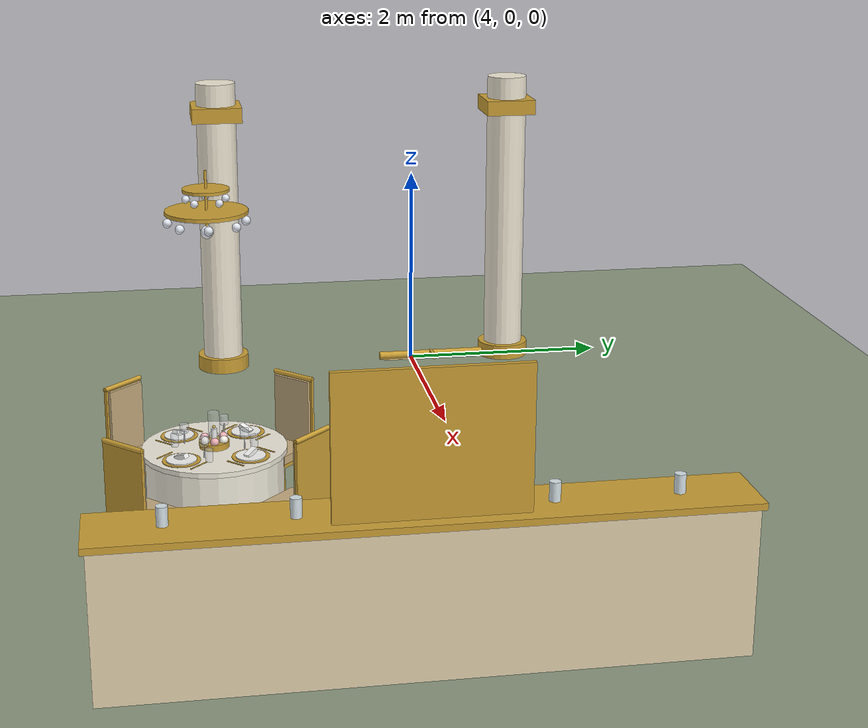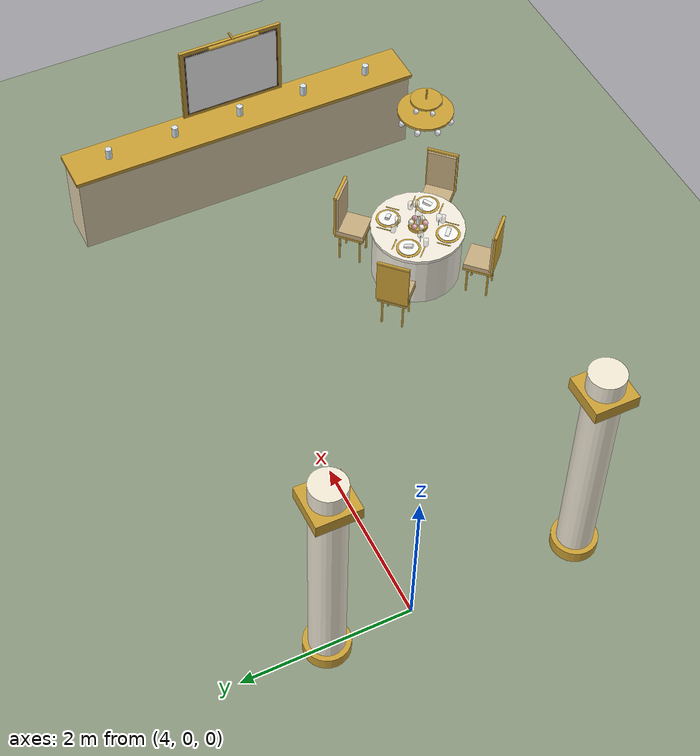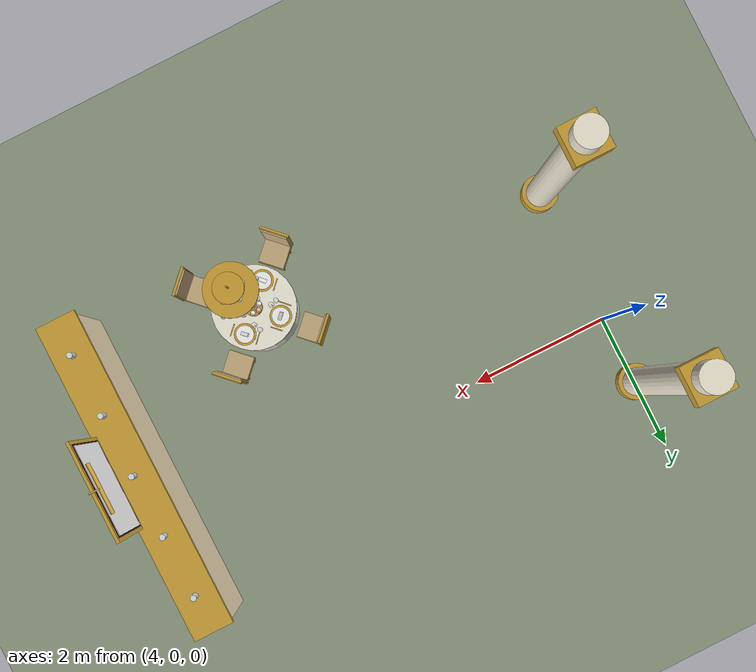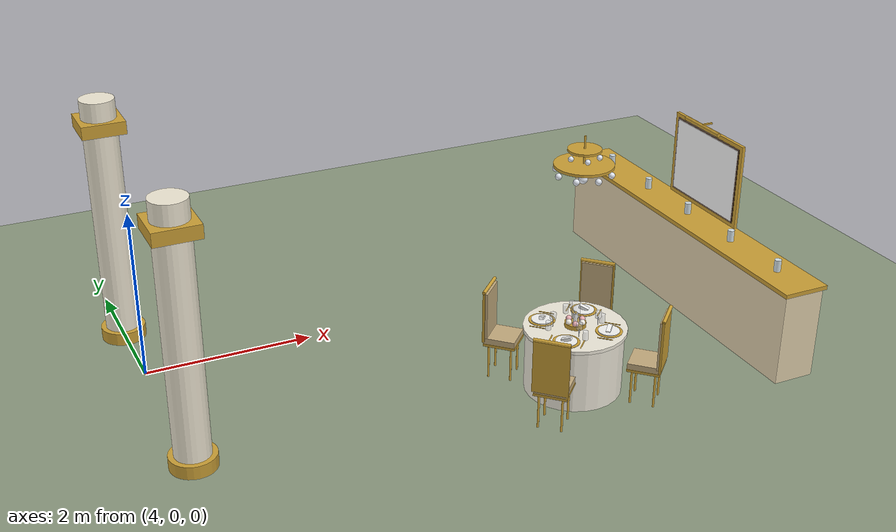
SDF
<sdf version="1.9">
 <world name="dar_tunibot">
  <model name="ground_plane">
   <static>true</static>
   <link name="link">
    <collision name="collision">
     <geometry><plane><normal>0 0 1</normal><size>60 60</size></plane></geometry>
    </collision>
    <visual name="visual">
     <geometry><plane><normal>0 0 1</normal><size>60 60</size></plane></geometry>
     <material><ambient>0.55 0.6 0.5 1</ambient><diffuse>0.55 0.6 0.5 1</diffuse></material>
    </visual>
   </link>
  </model>
  <model name="column_2">
   <static>true</static>
   <pose>4 -2 0 0 0 0</pose>
   <link name="link">
    <visual name="base_v">
     <pose>0.000 0.000 0.075 0.0000 0.0000 0.0000</pose>
     <geometry><cylinder><radius>0.260</radius><length>0.150</length></cylinder></geometry>
     <material>
      <ambient>0.8 0.63 0.21 1</ambient>
      <diffuse>0.8 0.63 0.21 1</diffuse>
      <specular>0.1 0.1 0.1 1</specular>
     </material>
    </visual>
    <collision name="base_c">
     <pose>0.000 0.000 0.075 0.0000 0.0000 0.0000</pose>
     <geometry><cylinder><radius>0.260</radius><length>0.150</length></cylinder></geometry>
    </collision>
    <visual name="shaft_v">
     <pose>0.000 0.000 1.500 0.0000 0.0000 0.0000</pose>
     <geometry><cylinder><radius>0.200</radius><length>3.000</length></cylinder></geometry>
     <material>
      <ambient>0.95 0.92 0.84 1</ambient>
      <diffuse>0.95 0.92 0.84 1</diffuse>
      <specular>0.1 0.1 0.1 1</specular>
     </material>
    </visual>
    <collision name="shaft_c">
     <pose>0.000 0.000 1.500 0.0000 0.0000 0.0000</pose>
     <geometry><cylinder><radius>0.200</radius><length>3.000</length></cylinder></geometry>
    </collision>
    <visual name="capital_v">
     <pose>0.000 0.000 2.700 0.0000 0.0000 0.0000</pose>
     <geometry><box><size>0.500 0.500 0.150</size></box></geometry>
     <material>
      <ambient>0.8 0.63 0.21 1</ambient>
      <diffuse>0.8 0.63 0.21 1</diffuse>
      <specular>0.1 0.1 0.1 1</specular>
     </material>
    </visual>
   </link>
  </model>
  <model name="column_7">
   <static>true</static>
   <pose>4 1 0 0 0 0</pose>
   <link name="link">
    <visual name="base_v">
     <pose>0.000 0.000 0.075 0.0000 0.0000 0.0000</pose>
     <geometry><cylinder><radius>0.260</radius><length>0.150</length></cylinder></geometry>
     <material>
      <ambient>0.8 0.63 0.21 1</ambient>
      <diffuse>0.8 0.63 0.21 1</diffuse>
      <specular>0.1 0.1 0.1 1</specular>
     </material>
    </visual>
    <collision name="base_c">
     <pose>0.000 0.000 0.075 0.0000 0.0000 0.0000</pose>
     <geometry><cylinder><radius>0.260</radius><length>0.150</length></cylinder></geometry>
    </collision>
    <visual name="shaft_v">
     <pose>0.000 0.000 1.500 0.0000 0.0000 0.0000</pose>
     <geometry><cylinder><radius>0.200</radius><length>3.000</length></cylinder></geometry>
     <material>
      <ambient>0.95 0.92 0.84 1</ambient>
      <diffuse>0.95 0.92 0.84 1</diffuse>
      <specular>0.1 0.1 0.1 1</specular>
     </material>
    </visual>
    <collision name="shaft_c">
     <pose>0.000 0.000 1.500 0.0000 0.0000 0.0000</pose>
     <geometry><cylinder><radius>0.200</radius><length>3.000</length></cylinder></geometry>
    </collision>
    <visual name="capital_v">
     <pose>0.000 0.000 2.700 0.0000 0.0000 0.0000</pose>
     <geometry><box><size>0.500 0.500 0.150</size></box></geometry>
     <material>
      <ambient>0.8 0.63 0.21 1</ambient>
      <diffuse>0.8 0.63 0.21 1</diffuse>
      <specular>0.1 0.1 0.1 1</specular>
     </material>
    </visual>
   </link>
  </model>
  <model name="table_4">
   <static>true</static>
   <pose>8.3 -2.3 0 0 0 0</pose>
   <link name="link">
    <visual name="cloth_v">
     <pose>0.000 0.000 0.370 0.0000 0.0000 0.0000</pose>
     <geometry><cylinder><radius>0.550</radius><length>0.740</length></cylinder></geometry>
     <material>
      <ambient>0.95 0.93 0.87 1</ambient>
      <diffuse>0.95 0.93 0.87 1</diffuse>
      <specular>0.1 0.1 0.1 1</specular>
     </material>
    </visual>
    <collision name="cloth_c">
     <pose>0.000 0.000 0.370 0.0000 0.0000 0.0000</pose>
     <geometry><cylinder><radius>0.550</radius><length>0.740</length></cylinder></geometry>
    </collision>
    <visual name="drape_v">
     <pose>0.000 0.000 0.750 0.0000 0.0000 0.0000</pose>
     <geometry><cylinder><radius>0.580</radius><length>0.040</length></cylinder></geometry>
     <material>
      <ambient>0.95 0.93 0.87 1</ambient>
      <diffuse>0.95 0.93 0.87 1</diffuse>
      <specular>0.1 0.1 0.1 1</specular>
     </material>
    </visual>
    <visual name="bowl_v">
     <pose>0.000 0.000 0.795 0.0000 0.0000 0.0000</pose>
     <geometry><cylinder><radius>0.120</radius><length>0.050</length></cylinder></geometry>
     <material>
      <ambient>0.8 0.63 0.21 1</ambient>
      <diffuse>0.8 0.63 0.21 1</diffuse>
      <specular>0.1 0.1 0.1 1</specular>
     </material>
    </visual>
    <visual name="bowl_foot_v">
     <pose>0.000 0.000 0.775 0.0000 0.0000 0.0000</pose>
     <geometry><cylinder><radius>0.060</radius><length>0.020</length></cylinder></geometry>
     <material>
      <ambient>0.8 0.63 0.21 1</ambient>
      <diffuse>0.8 0.63 0.21 1</diffuse>
      <specular>0.1 0.1 0.1 1</specular>
     </material>
    </visual>
    <visual name="candle_v">
     <pose>0.000 0.000 0.870 0.0000 0.0000 0.0000</pose>
     <geometry><cylinder><radius>0.022</radius><length>0.100</length></cylinder></geometry>
     <material>
      <ambient>0.98 0.98 0.97 1</ambient>
      <diffuse>0.98 0.98 0.97 1</diffuse>
      <specular>0.1 0.1 0.1 1</specular>
     </material>
    </visual>
    <visual name="flame_v">
     <pose>0.000 0.000 0.935 0.0000 0.0000 0.0000</pose>
     <geometry><sphere><radius>0.014</radius></sphere></geometry>
     <material>
      <ambient>0.8 0.63 0.21 1</ambient>
      <diffuse>0.8 0.63 0.21 1</diffuse>
      <specular>0.1 0.1 0.1 1</specular>
      <emissive>1.0 0.6 0.2 1</emissive>
     </material>
    </visual>
    <visual name="hurricane_v">
     <pose>0.000 0.000 0.940 0.0000 0.0000 0.0000</pose>
     <geometry><cylinder><radius>0.045</radius><length>0.240</length></cylinder></geometry>
     <transparency>0.75</transparency>
     <material>
      <ambient>0.9 0.92 0.96 1</ambient>
      <diffuse>0.9 0.92 0.96 1</diffuse>
      <specular>0.1 0.1 0.1 1</specular>
     </material>
    </visual>
    <visual name="rose0_v">
     <pose>0.085 0.000 0.835 0.0000 0.0000 0.0000</pose>
     <geometry><sphere><radius>0.035</radius></sphere></geometry>
     <material>
      <ambient>0.93 0.7 0.72 1</ambient>
      <diffuse>0.93 0.7 0.72 1</diffuse>
      <specular>0.1 0.1 0.1 1</specular>
     </material>
    </visual>
    <visual name="rose1_v">
     <pose>0.043 0.074 0.835 0.0000 0.0000 0.0000</pose>
     <geometry><sphere><radius>0.035</radius></sphere></geometry>
     <material>
      <ambient>0.97 0.95 0.91 1</ambient>
      <diffuse>0.97 0.95 0.91 1</diffuse>
      <specular>0.1 0.1 0.1 1</specular>
     </material>
    </visual>
    <visual name="rose2_v">
     <pose>-0.042 0.074 0.835 0.0000 0.0000 0.0000</pose>
     <geometry><sphere><radius>0.035</radius></sphere></geometry>
     <material>
      <ambient>0.93 0.7 0.72 1</ambient>
      <diffuse>0.93 0.7 0.72 1</diffuse>
      <specular>0.1 0.1 0.1 1</specular>
     </material>
    </visual>
    <visual name="rose3_v">
     <pose>-0.085 0.000 0.835 0.0000 0.0000 0.0000</pose>
     <geometry><sphere><radius>0.035</radius></sphere></geometry>
     <material>
      <ambient>0.97 0.95 0.91 1</ambient>
      <diffuse>0.97 0.95 0.91 1</diffuse>
      <specular>0.1 0.1 0.1 1</specular>
     </material>
    </visual>
    <visual name="rose4_v">
     <pose>-0.043 -0.074 0.835 0.0000 0.0000 0.0000</pose>
     <geometry><sphere><radius>0.035</radius></sphere></geometry>
     <material>
      <ambient>0.93 0.7 0.72 1</ambient>
      <diffuse>0.93 0.7 0.72 1</diffuse>
      <specular>0.1 0.1 0.1 1</specular>
     </material>
    </visual>
    <visual name="rose5_v">
     <pose>0.043 -0.074 0.835 0.0000 0.0000 0.0000</pose>
     <geometry><sphere><radius>0.035</radius></sphere></geometry>
     <material>
      <ambient>0.97 0.95 0.91 1</ambient>
      <diffuse>0.97 0.95 0.91 1</diffuse>
      <specular>0.1 0.1 0.1 1</specular>
     </material>
    </visual>
    <collision name="seat0_c">
     <pose>0.580 0.580 0.225 0.0000 0.0000 0.0000</pose>
     <geometry><box><size>0.400 0.400 0.450</size></box></geometry>
    </collision>
    <visual name="seat_frame0_v">
     <pose>0.580 0.580 0.430 0.0000 0.0000 0.7854</pose>
     <geometry><box><size>0.370 0.370 0.030</size></box></geometry>
     <material>
      <ambient>0.8 0.63 0.21 1</ambient>
      <diffuse>0.8 0.63 0.21 1</diffuse>
      <specular>0.1 0.1 0.1 1</specular>
     </material>
    </visual>
    <visual name="cushion0_v">
     <pose>0.580 0.580 0.480 0.0000 0.0000 0.7854</pose>
     <geometry><box><size>0.360 0.360 0.070</size></box></geometry>
     <material>
      <ambient>0.78 0.68 0.5 1</ambient>
      <diffuse>0.78 0.68 0.5 1</diffuse>
      <specular>0.1 0.1 0.1 1</specular>
     </material>
    </visual>
    <visual name="back_frame0_v">
     <pose>0.707 0.707 0.780 0.0000 0.0000 0.7854</pose>
     <geometry><box><size>0.025 0.400 0.620</size></box></geometry>
     <material>
      <ambient>0.8 0.63 0.21 1</ambient>
      <diffuse>0.8 0.63 0.21 1</diffuse>
      <specular>0.1 0.1 0.1 1</specular>
     </material>
    </visual>
    <visual name="back0_v">
     <pose>0.697 0.697 0.780 0.0000 0.0000 0.7854</pose>
     <geometry><box><size>0.050 0.360 0.580</size></box></geometry>
     <material>
      <ambient>0.78 0.68 0.5 1</ambient>
      <diffuse>0.78 0.68 0.5 1</diffuse>
      <specular>0.1 0.1 0.1 1</specular>
     </material>
    </visual>
    <visual name="back_top0_v">
     <pose>0.707 0.707 1.090 1.5708 0.0000 0.7854</pose>
     <geometry><cylinder><radius>0.020</radius><length>0.400</length></cylinder></geometry>
     <material>
      <ambient>0.8 0.63 0.21 1</ambient>
      <diffuse>0.8 0.63 0.21 1</diffuse>
      <specular>0.1 0.1 0.1 1</specular>
     </material>
    </visual>
    <visual name="leg0_0_v">
     <pose>0.580 0.396 0.210 0.0000 0.0000 0.7854</pose>
     <geometry><cylinder><radius>0.012</radius><length>0.420</length></cylinder></geometry>
     <material>
      <ambient>0.8 0.63 0.21 1</ambient>
      <diffuse>0.8 0.63 0.21 1</diffuse>
      <specular>0.1 0.1 0.1 1</specular>
     </material>
    </visual>
    <visual name="leg0_1_v">
     <pose>0.396 0.580 0.210 0.0000 0.0000 0.7854</pose>
     <geometry><cylinder><radius>0.012</radius><length>0.420</length></cylinder></geometry>
     <material>
      <ambient>0.8 0.63 0.21 1</ambient>
      <diffuse>0.8 0.63 0.21 1</diffuse>
      <specular>0.1 0.1 0.1 1</specular>
     </material>
    </visual>
    <visual name="leg0_2_v">
     <pose>0.764 0.580 0.210 0.0000 0.0000 0.7854</pose>
     <geometry><cylinder><radius>0.012</radius><length>0.420</length></cylinder></geometry>
     <material>
      <ambient>0.8 0.63 0.21 1</ambient>
      <diffuse>0.8 0.63 0.21 1</diffuse>
      <specular>0.1 0.1 0.1 1</specular>
     </material>
    </visual>
    <visual name="leg0_3_v">
     <pose>0.580 0.764 0.210 0.0000 0.0000 0.7854</pose>
     <geometry><cylinder><radius>0.012</radius><length>0.420</length></cylinder></geometry>
     <material>
      <ambient>0.8 0.63 0.21 1</ambient>
      <diffuse>0.8 0.63 0.21 1</diffuse>
      <specular>0.1 0.1 0.1 1</specular>
     </material>
    </visual>
    <visual name="charger0_v">
     <pose>0.269 0.269 0.773 0.0000 0.0000 0.7854</pose>
     <geometry><cylinder><radius>0.150</radius><length>0.006</length></cylinder></geometry>
     <material>
      <ambient>0.8 0.63 0.21 1</ambient>
      <diffuse>0.8 0.63 0.21 1</diffuse>
      <specular>0.1 0.1 0.1 1</specular>
     </material>
    </visual>
    <visual name="plate0_v">
     <pose>0.269 0.269 0.781 0.0000 0.0000 0.7854</pose>
     <geometry><cylinder><radius>0.120</radius><length>0.010</length></cylinder></geometry>
     <material>
      <ambient>0.98 0.98 0.97 1</ambient>
      <diffuse>0.98 0.98 0.97 1</diffuse>
      <specular>0.1 0.1 0.1 1</specular>
     </material>
    </visual>
    <visual name="napkin0_v">
     <pose>0.269 0.269 0.803 0.3500 0.0000 0.7854</pose>
     <geometry><box><size>0.050 0.110 0.035</size></box></geometry>
     <material>
      <ambient>0.98 0.98 0.97 1</ambient>
      <diffuse>0.98 0.98 0.97 1</diffuse>
      <specular>0.1 0.1 0.1 1</specular>
     </material>
    </visual>
    <visual name="fork0_v">
     <pose>0.396 0.141 0.772 0.0000 0.0000 0.7854</pose>
     <geometry><box><size>0.170 0.014 0.004</size></box></geometry>
     <material>
      <ambient>0.8 0.63 0.21 1</ambient>
      <diffuse>0.8 0.63 0.21 1</diffuse>
      <specular>0.1 0.1 0.1 1</specular>
     </material>
    </visual>
    <visual name="knife0_v">
     <pose>0.141 0.396 0.772 0.0000 0.0000 0.7854</pose>
     <geometry><box><size>0.180 0.012 0.004</size></box></geometry>
     <material>
      <ambient>0.8 0.63 0.21 1</ambient>
      <diffuse>0.8 0.63 0.21 1</diffuse>
      <specular>0.1 0.1 0.1 1</specular>
     </material>
    </visual>
    <visual name="wine_stem0_v">
     <pose>0.092 0.233 0.820 0.0000 0.0000 0.7854</pose>
     <geometry><cylinder><radius>0.004</radius><length>0.100</length></cylinder></geometry>
     <material>
      <ambient>0.9 0.92 0.96 1</ambient>
      <diffuse>0.9 0.92 0.96 1</diffuse>
      <specular>0.1 0.1 0.1 1</specular>
     </material>
    </visual>
    <visual name="wine_bowl0_v">
     <pose>0.092 0.233 0.905 0.0000 0.0000 0.7854</pose>
     <geometry><cylinder><radius>0.035</radius><length>0.070</length></cylinder></geometry>
     <transparency>0.6</transparency>
     <material>
      <ambient>0.9 0.92 0.96 1</ambient>
      <diffuse>0.9 0.92 0.96 1</diffuse>
      <specular>0.1 0.1 0.1 1</specular>
     </material>
    </visual>
    <visual name="water0_v">
     <pose>0.057 0.311 0.820 0.0000 0.0000 0.7854</pose>
     <geometry><cylinder><radius>0.030</radius><length>0.100</length></cylinder></geometry>
     <transparency>0.6</transparency>
     <material>
      <ambient>0.9 0.92 0.96 1</ambient>
      <diffuse>0.9 0.92 0.96 1</diffuse>
      <specular>0.1 0.1 0.1 1</specular>
     </material>
    </visual>
    <collision name="seat1_c">
     <pose>-0.580 0.580 0.225 0.0000 0.0000 0.0000</pose>
     <geometry><box><size>0.400 0.400 0.450</size></box></geometry>
    </collision>
    <visual name="seat_frame1_v">
     <pose>-0.580 0.580 0.430 0.0000 0.0000 2.3562</pose>
     <geometry><box><size>0.370 0.370 0.030</size></box></geometry>
     <material>
      <ambient>0.8 0.63 0.21 1</ambient>
      <diffuse>0.8 0.63 0.21 1</diffuse>
      <specular>0.1 0.1 0.1 1</specular>
     </material>
    </visual>
    <visual name="cushion1_v">
     <pose>-0.580 0.580 0.480 0.0000 0.0000 2.3562</pose>
     <geometry><box><size>0.360 0.360 0.070</size></box></geometry>
     <material>
      <ambient>0.78 0.68 0.5 1</ambient>
      <diffuse>0.78 0.68 0.5 1</diffuse>
      <specular>0.1 0.1 0.1 1</specular>
     </material>
    </visual>
    <visual name="back_frame1_v">
     <pose>-0.707 0.707 0.780 0.0000 0.0000 2.3562</pose>
     <geometry><box><size>0.025 0.400 0.620</size></box></geometry>
     <material>
      <ambient>0.8 0.63 0.21 1</ambient>
      <diffuse>0.8 0.63 0.21 1</diffuse>
      <specular>0.1 0.1 0.1 1</specular>
     </material>
    </visual>
    <visual name="back1_v">
     <pose>-0.697 0.697 0.780 0.0000 0.0000 2.3562</pose>
     <geometry><box><size>0.050 0.360 0.580</size></box></geometry>
     <material>
      <ambient>0.78 0.68 0.5 1</ambient>
      <diffuse>0.78 0.68 0.5 1</diffuse>
      <specular>0.1 0.1 0.1 1</specular>
     </material>
    </visual>
    <visual name="back_top1_v">
     <pose>-0.707 0.707 1.090 1.5708 0.0000 2.3562</pose>
     <geometry><cylinder><radius>0.020</radius><length>0.400</length></cylinder></geometry>
     <material>
      <ambient>0.8 0.63 0.21 1</ambient>
      <diffuse>0.8 0.63 0.21 1</diffuse>
      <specular>0.1 0.1 0.1 1</specular>
     </material>
    </visual>
    <visual name="leg1_0_v">
     <pose>-0.396 0.580 0.210 0.0000 0.0000 2.3562</pose>
     <geometry><cylinder><radius>0.012</radius><length>0.420</length></cylinder></geometry>
     <material>
      <ambient>0.8 0.63 0.21 1</ambient>
      <diffuse>0.8 0.63 0.21 1</diffuse>
      <specular>0.1 0.1 0.1 1</specular>
     </material>
    </visual>
    <visual name="leg1_1_v">
     <pose>-0.580 0.396 0.210 0.0000 0.0000 2.3562</pose>
     <geometry><cylinder><radius>0.012</radius><length>0.420</length></cylinder></geometry>
     <material>
      <ambient>0.8 0.63 0.21 1</ambient>
      <diffuse>0.8 0.63 0.21 1</diffuse>
      <specular>0.1 0.1 0.1 1</specular>
     </material>
    </visual>
    <visual name="leg1_2_v">
     <pose>-0.580 0.764 0.210 0.0000 0.0000 2.3562</pose>
     <geometry><cylinder><radius>0.012</radius><length>0.420</length></cylinder></geometry>
     <material>
      <ambient>0.8 0.63 0.21 1</ambient>
      <diffuse>0.8 0.63 0.21 1</diffuse>
      <specular>0.1 0.1 0.1 1</specular>
     </material>
    </visual>
    <visual name="leg1_3_v">
     <pose>-0.764 0.580 0.210 0.0000 0.0000 2.3562</pose>
     <geometry><cylinder><radius>0.012</radius><length>0.420</length></cylinder></geometry>
     <material>
      <ambient>0.8 0.63 0.21 1</ambient>
      <diffuse>0.8 0.63 0.21 1</diffuse>
      <specular>0.1 0.1 0.1 1</specular>
     </material>
    </visual>
    <visual name="charger1_v">
     <pose>-0.269 0.269 0.773 0.0000 0.0000 2.3562</pose>
     <geometry><cylinder><radius>0.150</radius><length>0.006</length></cylinder></geometry>
     <material>
      <ambient>0.8 0.63 0.21 1</ambient>
      <diffuse>0.8 0.63 0.21 1</diffuse>
      <specular>0.1 0.1 0.1 1</specular>
     </material>
    </visual>
    <visual name="plate1_v">
     <pose>-0.269 0.269 0.781 0.0000 0.0000 2.3562</pose>
     <geometry><cylinder><radius>0.120</radius><length>0.010</length></cylinder></geometry>
     <material>
      <ambient>0.98 0.98 0.97 1</ambient>
      <diffuse>0.98 0.98 0.97 1</diffuse>
      <specular>0.1 0.1 0.1 1</specular>
     </material>
    </visual>
    <visual name="napkin1_v">
     <pose>-0.269 0.269 0.803 0.3500 0.0000 2.3562</pose>
     <geometry><box><size>0.050 0.110 0.035</size></box></geometry>
     <material>
      <ambient>0.98 0.98 0.97 1</ambient>
      <diffuse>0.98 0.98 0.97 1</diffuse>
      <specular>0.1 0.1 0.1 1</specular>
     </material>
    </visual>
    <visual name="fork1_v">
     <pose>-0.141 0.396 0.772 0.0000 0.0000 2.3562</pose>
     <geometry><box><size>0.170 0.014 0.004</size></box></geometry>
     <material>
      <ambient>0.8 0.63 0.21 1</ambient>
      <diffuse>0.8 0.63 0.21 1</diffuse>
      <specular>0.1 0.1 0.1 1</specular>
     </material>
    </visual>
    <visual name="knife1_v">
     <pose>-0.396 0.141 0.772 0.0000 0.0000 2.3562</pose>
     <geometry><box><size>0.180 0.012 0.004</size></box></geometry>
     <material>
      <ambient>0.8 0.63 0.21 1</ambient>
      <diffuse>0.8 0.63 0.21 1</diffuse>
      <specular>0.1 0.1 0.1 1</specular>
     </material>
    </visual>
    <visual name="wine_stem1_v">
     <pose>-0.233 0.092 0.820 0.0000 0.0000 2.3562</pose>
     <geometry><cylinder><radius>0.004</radius><length>0.100</length></cylinder></geometry>
     <material>
      <ambient>0.9 0.92 0.96 1</ambient>
      <diffuse>0.9 0.92 0.96 1</diffuse>
      <specular>0.1 0.1 0.1 1</specular>
     </material>
    </visual>
    <visual name="wine_bowl1_v">
     <pose>-0.233 0.092 0.905 0.0000 0.0000 2.3562</pose>
     <geometry><cylinder><radius>0.035</radius><length>0.070</length></cylinder></geometry>
     <transparency>0.6</transparency>
     <material>
      <ambient>0.9 0.92 0.96 1</ambient>
      <diffuse>0.9 0.92 0.96 1</diffuse>
      <specular>0.1 0.1 0.1 1</specular>
     </material>
    </visual>
    <visual name="water1_v">
     <pose>-0.311 0.057 0.820 0.0000 0.0000 2.3562</pose>
     <geometry><cylinder><radius>0.030</radius><length>0.100</length></cylinder></geometry>
     <transparency>0.6</transparency>
     <material>
      <ambient>0.9 0.92 0.96 1</ambient>
      <diffuse>0.9 0.92 0.96 1</diffuse>
      <specular>0.1 0.1 0.1 1</specular>
     </material>
    </visual>
    <collision name="seat2_c">
     <pose>-0.580 -0.580 0.225 0.0000 0.0000 0.0000</pose>
     <geometry><box><size>0.400 0.400 0.450</size></box></geometry>
    </collision>
    <visual name="seat_frame2_v">
     <pose>-0.580 -0.580 0.430 0.0000 0.0000 3.9270</pose>
     <geometry><box><size>0.370 0.370 0.030</size></box></geometry>
     <material>
      <ambient>0.8 0.63 0.21 1</ambient>
      <diffuse>0.8 0.63 0.21 1</diffuse>
      <specular>0.1 0.1 0.1 1</specular>
     </material>
    </visual>
    <visual name="cushion2_v">
     <pose>-0.580 -0.580 0.480 0.0000 0.0000 3.9270</pose>
     <geometry><box><size>0.360 0.360 0.070</size></box></geometry>
     <material>
      <ambient>0.78 0.68 0.5 1</ambient>
      <diffuse>0.78 0.68 0.5 1</diffuse>
      <specular>0.1 0.1 0.1 1</specular>
     </material>
    </visual>
    <visual name="back_frame2_v">
     <pose>-0.707 -0.707 0.780 0.0000 0.0000 3.9270</pose>
     <geometry><box><size>0.025 0.400 0.620</size></box></geometry>
     <material>
      <ambient>0.8 0.63 0.21 1</ambient>
      <diffuse>0.8 0.63 0.21 1</diffuse>
      <specular>0.1 0.1 0.1 1</specular>
     </material>
    </visual>
    <visual name="back2_v">
     <pose>-0.697 -0.697 0.780 0.0000 0.0000 3.9270</pose>
     <geometry><box><size>0.050 0.360 0.580</size></box></geometry>
     <material>
      <ambient>0.78 0.68 0.5 1</ambient>
      <diffuse>0.78 0.68 0.5 1</diffuse>
      <specular>0.1 0.1 0.1 1</specular>
     </material>
    </visual>
    <visual name="back_top2_v">
     <pose>-0.707 -0.707 1.090 1.5708 0.0000 3.9270</pose>
     <geometry><cylinder><radius>0.020</radius><length>0.400</length></cylinder></geometry>
     <material>
      <ambient>0.8 0.63 0.21 1</ambient>
      <diffuse>0.8 0.63 0.21 1</diffuse>
      <specular>0.1 0.1 0.1 1</specular>
     </material>
    </visual>
    <visual name="leg2_0_v">
     <pose>-0.580 -0.396 0.210 0.0000 0.0000 3.9270</pose>
     <geometry><cylinder><radius>0.012</radius><length>0.420</length></cylinder></geometry>
     <material>
      <ambient>0.8 0.63 0.21 1</ambient>
      <diffuse>0.8 0.63 0.21 1</diffuse>
      <specular>0.1 0.1 0.1 1</specular>
     </material>
    </visual>
    <visual name="leg2_1_v">
     <pose>-0.396 -0.580 0.210 0.0000 0.0000 3.9270</pose>
     <geometry><cylinder><radius>0.012</radius><length>0.420</length></cylinder></geometry>
     <material>
      <ambient>0.8 0.63 0.21 1</ambient>
      <diffuse>0.8 0.63 0.21 1</diffuse>
      <specular>0.1 0.1 0.1 1</specular>
     </material>
    </visual>
    <visual name="leg2_2_v">
     <pose>-0.764 -0.580 0.210 0.0000 0.0000 3.9270</pose>
     <geometry><cylinder><radius>0.012</radius><length>0.420</length></cylinder></geometry>
     <material>
      <ambient>0.8 0.63 0.21 1</ambient>
      <diffuse>0.8 0.63 0.21 1</diffuse>
      <specular>0.1 0.1 0.1 1</specular>
     </material>
    </visual>
    <visual name="leg2_3_v">
     <pose>-0.580 -0.764 0.210 0.0000 0.0000 3.9270</pose>
     <geometry><cylinder><radius>0.012</radius><length>0.420</length></cylinder></geometry>
     <material>
      <ambient>0.8 0.63 0.21 1</ambient>
      <diffuse>0.8 0.63 0.21 1</diffuse>
      <specular>0.1 0.1 0.1 1</specular>
     </material>
    </visual>
    <visual name="charger2_v">
     <pose>-0.269 -0.269 0.773 0.0000 0.0000 3.9270</pose>
     <geometry><cylinder><radius>0.150</radius><length>0.006</length></cylinder></geometry>
     <material>
      <ambient>0.8 0.63 0.21 1</ambient>
      <diffuse>0.8 0.63 0.21 1</diffuse>
      <specular>0.1 0.1 0.1 1</specular>
     </material>
    </visual>
    <visual name="plate2_v">
     <pose>-0.269 -0.269 0.781 0.0000 0.0000 3.9270</pose>
     <geometry><cylinder><radius>0.120</radius><length>0.010</length></cylinder></geometry>
     <material>
      <ambient>0.98 0.98 0.97 1</ambient>
      <diffuse>0.98 0.98 0.97 1</diffuse>
      <specular>0.1 0.1 0.1 1</specular>
     </material>
    </visual>
    <visual name="napkin2_v">
     <pose>-0.269 -0.269 0.803 0.3500 0.0000 3.9270</pose>
     <geometry><box><size>0.050 0.110 0.035</size></box></geometry>
     <material>
      <ambient>0.98 0.98 0.97 1</ambient>
      <diffuse>0.98 0.98 0.97 1</diffuse>
      <specular>0.1 0.1 0.1 1</specular>
     </material>
    </visual>
    <visual name="fork2_v">
     <pose>-0.396 -0.141 0.772 0.0000 0.0000 3.9270</pose>
     <geometry><box><size>0.170 0.014 0.004</size></box></geometry>
     <material>
      <ambient>0.8 0.63 0.21 1</ambient>
      <diffuse>0.8 0.63 0.21 1</diffuse>
      <specular>0.1 0.1 0.1 1</specular>
     </material>
    </visual>
    <visual name="knife2_v">
     <pose>-0.141 -0.396 0.772 0.0000 0.0000 3.9270</pose>
     <geometry><box><size>0.180 0.012 0.004</size></box></geometry>
     <material>
      <ambient>0.8 0.63 0.21 1</ambient>
      <diffuse>0.8 0.63 0.21 1</diffuse>
      <specular>0.1 0.1 0.1 1</specular>
     </material>
    </visual>
    <visual name="wine_stem2_v">
     <pose>-0.092 -0.233 0.820 0.0000 0.0000 3.9270</pose>
     <geometry><cylinder><radius>0.004</radius><length>0.100</length></cylinder></geometry>
     <material>
      <ambient>0.9 0.92 0.96 1</ambient>
      <diffuse>0.9 0.92 0.96 1</diffuse>
      <specular>0.1 0.1 0.1 1</specular>
     </material>
    </visual>
    <visual name="wine_bowl2_v">
     <pose>-0.092 -0.233 0.905 0.0000 0.0000 3.9270</pose>
     <geometry><cylinder><radius>0.035</radius><length>0.070</length></cylinder></geometry>
     <transparency>0.6</transparency>
     <material>
      <ambient>0.9 0.92 0.96 1</ambient>
      <diffuse>0.9 0.92 0.96 1</diffuse>
      <specular>0.1 0.1 0.1 1</specular>
     </material>
    </visual>
    <visual name="water2_v">
     <pose>-0.057 -0.311 0.820 0.0000 0.0000 3.9270</pose>
     <geometry><cylinder><radius>0.030</radius><length>0.100</length></cylinder></geometry>
     <transparency>0.6</transparency>
     <material>
      <ambient>0.9 0.92 0.96 1</ambient>
      <diffuse>0.9 0.92 0.96 1</diffuse>
      <specular>0.1 0.1 0.1 1</specular>
     </material>
    </visual>
    <collision name="seat3_c">
     <pose>0.580 -0.580 0.225 0.0000 0.0000 0.0000</pose>
     <geometry><box><size>0.400 0.400 0.450</size></box></geometry>
    </collision>
    <visual name="seat_frame3_v">
     <pose>0.580 -0.580 0.430 0.0000 0.0000 5.4978</pose>
     <geometry><box><size>0.370 0.370 0.030</size></box></geometry>
     <material>
      <ambient>0.8 0.63 0.21 1</ambient>
      <diffuse>0.8 0.63 0.21 1</diffuse>
      <specular>0.1 0.1 0.1 1</specular>
     </material>
    </visual>
    <visual name="cushion3_v">
     <pose>0.580 -0.580 0.480 0.0000 0.0000 5.4978</pose>
     <geometry><box><size>0.360 0.360 0.070</size></box></geometry>
     <material>
      <ambient>0.78 0.68 0.5 1</ambient>
      <diffuse>0.78 0.68 0.5 1</diffuse>
      <specular>0.1 0.1 0.1 1</specular>
     </material>
    </visual>
    <visual name="back_frame3_v">
     <pose>0.707 -0.707 0.780 0.0000 0.0000 5.4978</pose>
     <geometry><box><size>0.025 0.400 0.620</size></box></geometry>
     <material>
      <ambient>0.8 0.63 0.21 1</ambient>
      <diffuse>0.8 0.63 0.21 1</diffuse>
      <specular>0.1 0.1 0.1 1</specular>
     </material>
    </visual>
    <visual name="back3_v">
     <pose>0.697 -0.697 0.780 0.0000 0.0000 5.4978</pose>
     <geometry><box><size>0.050 0.360 0.580</size></box></geometry>
     <material>
      <ambient>0.78 0.68 0.5 1</ambient>
      <diffuse>0.78 0.68 0.5 1</diffuse>
      <specular>0.1 0.1 0.1 1</specular>
     </material>
    </visual>
    <visual name="back_top3_v">
     <pose>0.707 -0.707 1.090 1.5708 0.0000 5.4978</pose>
     <geometry><cylinder><radius>0.020</radius><length>0.400</length></cylinder></geometry>
     <material>
      <ambient>0.8 0.63 0.21 1</ambient>
      <diffuse>0.8 0.63 0.21 1</diffuse>
      <specular>0.1 0.1 0.1 1</specular>
     </material>
    </visual>
    <visual name="leg3_0_v">
     <pose>0.396 -0.580 0.210 0.0000 0.0000 5.4978</pose>
     <geometry><cylinder><radius>0.012</radius><length>0.420</length></cylinder></geometry>
     <material>
      <ambient>0.8 0.63 0.21 1</ambient>
      <diffuse>0.8 0.63 0.21 1</diffuse>
      <specular>0.1 0.1 0.1 1</specular>
     </material>
    </visual>
    <visual name="leg3_1_v">
     <pose>0.580 -0.396 0.210 0.0000 0.0000 5.4978</pose>
     <geometry><cylinder><radius>0.012</radius><length>0.420</length></cylinder></geometry>
     <material>
      <ambient>0.8 0.63 0.21 1</ambient>
      <diffuse>0.8 0.63 0.21 1</diffuse>
      <specular>0.1 0.1 0.1 1</specular>
     </material>
    </visual>
    <visual name="leg3_2_v">
     <pose>0.580 -0.764 0.210 0.0000 0.0000 5.4978</pose>
     <geometry><cylinder><radius>0.012</radius><length>0.420</length></cylinder></geometry>
     <material>
      <ambient>0.8 0.63 0.21 1</ambient>
      <diffuse>0.8 0.63 0.21 1</diffuse>
      <specular>0.1 0.1 0.1 1</specular>
     </material>
    </visual>
    <visual name="leg3_3_v">
     <pose>0.764 -0.580 0.210 0.0000 0.0000 5.4978</pose>
     <geometry><cylinder><radius>0.012</radius><length>0.420</length></cylinder></geometry>
     <material>
      <ambient>0.8 0.63 0.21 1</ambient>
      <diffuse>0.8 0.63 0.21 1</diffuse>
      <specular>0.1 0.1 0.1 1</specular>
     </material>
    </visual>
    <visual name="charger3_v">
     <pose>0.269 -0.269 0.773 0.0000 0.0000 5.4978</pose>
     <geometry><cylinder><radius>0.150</radius><length>0.006</length></cylinder></geometry>
     <material>
      <ambient>0.8 0.63 0.21 1</ambient>
      <diffuse>0.8 0.63 0.21 1</diffuse>
      <specular>0.1 0.1 0.1 1</specular>
     </material>
    </visual>
    <visual name="plate3_v">
     <pose>0.269 -0.269 0.781 0.0000 0.0000 5.4978</pose>
     <geometry><cylinder><radius>0.120</radius><length>0.010</length></cylinder></geometry>
     <material>
      <ambient>0.98 0.98 0.97 1</ambient>
      <diffuse>0.98 0.98 0.97 1</diffuse>
      <specular>0.1 0.1 0.1 1</specular>
     </material>
    </visual>
    <visual name="napkin3_v">
     <pose>0.269 -0.269 0.803 0.3500 0.0000 5.4978</pose>
     <geometry><box><size>0.050 0.110 0.035</size></box></geometry>
     <material>
      <ambient>0.98 0.98 0.97 1</ambient>
      <diffuse>0.98 0.98 0.97 1</diffuse>
      <specular>0.1 0.1 0.1 1</specular>
     </material>
    </visual>
    <visual name="fork3_v">
     <pose>0.141 -0.396 0.772 0.0000 0.0000 5.4978</pose>
     <geometry><box><size>0.170 0.014 0.004</size></box></geometry>
     <material>
      <ambient>0.8 0.63 0.21 1</ambient>
      <diffuse>0.8 0.63 0.21 1</diffuse>
      <specular>0.1 0.1 0.1 1</specular>
     </material>
    </visual>
    <visual name="knife3_v">
     <pose>0.396 -0.141 0.772 0.0000 0.0000 5.4978</pose>
     <geometry><box><size>0.180 0.012 0.004</size></box></geometry>
     <material>
      <ambient>0.8 0.63 0.21 1</ambient>
      <diffuse>0.8 0.63 0.21 1</diffuse>
      <specular>0.1 0.1 0.1 1</specular>
     </material>
    </visual>
    <visual name="wine_stem3_v">
     <pose>0.233 -0.092 0.820 0.0000 0.0000 5.4978</pose>
     <geometry><cylinder><radius>0.004</radius><length>0.100</length></cylinder></geometry>
     <material>
      <ambient>0.9 0.92 0.96 1</ambient>
      <diffuse>0.9 0.92 0.96 1</diffuse>
      <specular>0.1 0.1 0.1 1</specular>
     </material>
    </visual>
    <visual name="wine_bowl3_v">
     <pose>0.233 -0.092 0.905 0.0000 0.0000 5.4978</pose>
     <geometry><cylinder><radius>0.035</radius><length>0.070</length></cylinder></geometry>
     <transparency>0.6</transparency>
     <material>
      <ambient>0.9 0.92 0.96 1</ambient>
      <diffuse>0.9 0.92 0.96 1</diffuse>
      <specular>0.1 0.1 0.1 1</specular>
     </material>
    </visual>
    <visual name="water3_v">
     <pose>0.311 -0.057 0.820 0.0000 0.0000 5.4978</pose>
     <geometry><cylinder><radius>0.030</radius><length>0.100</length></cylinder></geometry>
     <transparency>0.6</transparency>
     <material>
      <ambient>0.9 0.92 0.96 1</ambient>
      <diffuse>0.9 0.92 0.96 1</diffuse>
      <specular>0.1 0.1 0.1 1</specular>
     </material>
    </visual>
    <visual name="chand_rod_v">
     <pose>0.000 0.000 2.750 0.0000 0.0000 0.0000</pose>
     <geometry><cylinder><radius>0.010</radius><length>0.500</length></cylinder></geometry>
     <material>
      <ambient>0.8 0.63 0.21 1</ambient>
      <diffuse>0.8 0.63 0.21 1</diffuse>
      <specular>0.1 0.1 0.1 1</specular>
     </material>
    </visual>
    <visual name="chand_ring_v">
     <pose>0.000 0.000 2.680 0.0000 0.0000 0.0000</pose>
     <geometry><cylinder><radius>0.320</radius><length>0.030</length></cylinder></geometry>
     <material>
      <ambient>0.8 0.63 0.21 1</ambient>
      <diffuse>0.8 0.63 0.21 1</diffuse>
      <specular>0.1 0.1 0.1 1</specular>
     </material>
    </visual>
    <visual name="chand_ring_top_v">
     <pose>0.000 0.000 2.850 0.0000 0.0000 0.0000</pose>
     <geometry><cylinder><radius>0.180</radius><length>0.025</length></cylinder></geometry>
     <material>
      <ambient>0.8 0.63 0.21 1</ambient>
      <diffuse>0.8 0.63 0.21 1</diffuse>
      <specular>0.1 0.1 0.1 1</specular>
     </material>
    </visual>
    <visual name="chand_drop_v">
     <pose>0.000 0.000 2.520 0.0000 0.0000 0.0000</pose>
     <geometry><sphere><radius>0.050</radius></sphere></geometry>
     <material>
      <ambient>0.9 0.92 0.96 1</ambient>
      <diffuse>0.9 0.92 0.96 1</diffuse>
      <specular>0.1 0.1 0.1 1</specular>
      <emissive>0.55 0.52 0.45 1</emissive>
     </material>
    </visual>
    <visual name="crystal0_0_v">
     <pose>0.300 0.000 2.600 0.0000 0.0000 0.0000</pose>
     <geometry><sphere><radius>0.035</radius></sphere></geometry>
     <material>
      <ambient>0.9 0.92 0.96 1</ambient>
      <diffuse>0.9 0.92 0.96 1</diffuse>
      <specular>0.1 0.1 0.1 1</specular>
      <emissive>0.55 0.52 0.45 1</emissive>
     </material>
    </visual>
    <visual name="crystal0_1_v">
     <pose>0.212 0.212 2.600 0.0000 0.0000 0.0000</pose>
     <geometry><sphere><radius>0.035</radius></sphere></geometry>
     <material>
      <ambient>0.9 0.92 0.96 1</ambient>
      <diffuse>0.9 0.92 0.96 1</diffuse>
      <specular>0.1 0.1 0.1 1</specular>
      <emissive>0.55 0.52 0.45 1</emissive>
     </material>
    </visual>
    <visual name="crystal0_2_v">
     <pose>0.000 0.300 2.600 0.0000 0.0000 0.0000</pose>
     <geometry><sphere><radius>0.035</radius></sphere></geometry>
     <material>
      <ambient>0.9 0.92 0.96 1</ambient>
      <diffuse>0.9 0.92 0.96 1</diffuse>
      <specular>0.1 0.1 0.1 1</specular>
      <emissive>0.55 0.52 0.45 1</emissive>
     </material>
    </visual>
    <visual name="crystal0_3_v">
     <pose>-0.212 0.212 2.600 0.0000 0.0000 0.0000</pose>
     <geometry><sphere><radius>0.035</radius></sphere></geometry>
     <material>
      <ambient>0.9 0.92 0.96 1</ambient>
      <diffuse>0.9 0.92 0.96 1</diffuse>
      <specular>0.1 0.1 0.1 1</specular>
      <emissive>0.55 0.52 0.45 1</emissive>
     </material>
    </visual>
    <visual name="crystal0_4_v">
     <pose>-0.300 0.000 2.600 0.0000 0.0000 0.0000</pose>
     <geometry><sphere><radius>0.035</radius></sphere></geometry>
     <material>
      <ambient>0.9 0.92 0.96 1</ambient>
      <diffuse>0.9 0.92 0.96 1</diffuse>
      <specular>0.1 0.1 0.1 1</specular>
      <emissive>0.55 0.52 0.45 1</emissive>
     </material>
    </visual>
    <visual name="crystal0_5_v">
     <pose>-0.212 -0.212 2.600 0.0000 0.0000 0.0000</pose>
     <geometry><sphere><radius>0.035</radius></sphere></geometry>
     <material>
      <ambient>0.9 0.92 0.96 1</ambient>
      <diffuse>0.9 0.92 0.96 1</diffuse>
      <specular>0.1 0.1 0.1 1</specular>
      <emissive>0.55 0.52 0.45 1</emissive>
     </material>
    </visual>
    <visual name="crystal0_6_v">
     <pose>-0.000 -0.300 2.600 0.0000 0.0000 0.0000</pose>
     <geometry><sphere><radius>0.035</radius></sphere></geometry>
     <material>
      <ambient>0.9 0.92 0.96 1</ambient>
      <diffuse>0.9 0.92 0.96 1</diffuse>
      <specular>0.1 0.1 0.1 1</specular>
      <emissive>0.55 0.52 0.45 1</emissive>
     </material>
    </visual>
    <visual name="crystal0_7_v">
     <pose>0.212 -0.212 2.600 0.0000 0.0000 0.0000</pose>
     <geometry><sphere><radius>0.035</radius></sphere></geometry>
     <material>
      <ambient>0.9 0.92 0.96 1</ambient>
      <diffuse>0.9 0.92 0.96 1</diffuse>
      <specular>0.1 0.1 0.1 1</specular>
      <emissive>0.55 0.52 0.45 1</emissive>
     </material>
    </visual>
    <visual name="crystal1_0_v">
     <pose>0.129 0.094 2.770 0.0000 0.0000 0.0000</pose>
     <geometry><sphere><radius>0.030</radius></sphere></geometry>
     <material>
      <ambient>0.9 0.92 0.96 1</ambient>
      <diffuse>0.9 0.92 0.96 1</diffuse>
      <specular>0.1 0.1 0.1 1</specular>
      <emissive>0.55 0.52 0.45 1</emissive>
     </material>
    </visual>
    <visual name="crystal1_1_v">
     <pose>-0.049 0.152 2.770 0.0000 0.0000 0.0000</pose>
     <geometry><sphere><radius>0.030</radius></sphere></geometry>
     <material>
      <ambient>0.9 0.92 0.96 1</ambient>
      <diffuse>0.9 0.92 0.96 1</diffuse>
      <specular>0.1 0.1 0.1 1</specular>
      <emissive>0.55 0.52 0.45 1</emissive>
     </material>
    </visual>
    <visual name="crystal1_2_v">
     <pose>-0.160 0.000 2.770 0.0000 0.0000 0.0000</pose>
     <geometry><sphere><radius>0.030</radius></sphere></geometry>
     <material>
      <ambient>0.9 0.92 0.96 1</ambient>
      <diffuse>0.9 0.92 0.96 1</diffuse>
      <specular>0.1 0.1 0.1 1</specular>
      <emissive>0.55 0.52 0.45 1</emissive>
     </material>
    </visual>
    <visual name="crystal1_3_v">
     <pose>-0.049 -0.152 2.770 0.0000 0.0000 0.0000</pose>
     <geometry><sphere><radius>0.030</radius></sphere></geometry>
     <material>
      <ambient>0.9 0.92 0.96 1</ambient>
      <diffuse>0.9 0.92 0.96 1</diffuse>
      <specular>0.1 0.1 0.1 1</specular>
      <emissive>0.55 0.52 0.45 1</emissive>
     </material>
    </visual>
    <visual name="crystal1_4_v">
     <pose>0.129 -0.094 2.770 0.0000 0.0000 0.0000</pose>
     <geometry><sphere><radius>0.030</radius></sphere></geometry>
     <material>
      <ambient>0.9 0.92 0.96 1</ambient>
      <diffuse>0.9 0.92 0.96 1</diffuse>
      <specular>0.1 0.1 0.1 1</specular>
      <emissive>0.55 0.52 0.45 1</emissive>
     </material>
    </visual>
   </link>
  </model>
  <model name="mint_tea_bar">
   <static>true</static>
   <pose>10.65 -1.0 0 0 0 0</pose>
   <link name="link">
    <visual name="body_v">
     <pose>0.000 0.000 0.550 0.0000 0.0000 0.0000</pose>
     <geometry><box><size>0.500 4.500 1.100</size></box></geometry>
     <material>
      <ambient>0.9 0.83 0.69 1</ambient>
      <diffuse>0.9 0.83 0.69 1</diffuse>
      <specular>0.1 0.1 0.1 1</specular>
     </material>
    </visual>
    <collision name="body_c">
     <pose>0.000 0.000 0.550 0.0000 0.0000 0.0000</pose>
     <geometry><box><size>0.500 4.500 1.100</size></box></geometry>
    </collision>
    <visual name="top_v">
     <pose>0.000 0.000 1.125 0.0000 0.0000 0.0000</pose>
     <geometry><box><size>0.560 4.560 0.050</size></box></geometry>
     <material>
      <ambient>0.8 0.63 0.21 1</ambient>
      <diffuse>0.8 0.63 0.21 1</diffuse>
      <specular>0.1 0.1 0.1 1</specular>
     </material>
    </visual>
    <visual name="glass0_v">
     <pose>0.000 -1.750 1.220 0.0000 0.0000 0.0000</pose>
     <geometry><cylinder><radius>0.040</radius><length>0.140</length></cylinder></geometry>
     <material>
      <ambient>0.85 0.9 0.92 1</ambient>
      <diffuse>0.85 0.9 0.92 1</diffuse>
      <specular>0.1 0.1 0.1 1</specular>
     </material>
    </visual>
    <visual name="glass1_v">
     <pose>0.000 -0.875 1.220 0.0000 0.0000 0.0000</pose>
     <geometry><cylinder><radius>0.040</radius><length>0.140</length></cylinder></geometry>
     <material>
      <ambient>0.85 0.9 0.92 1</ambient>
      <diffuse>0.85 0.9 0.92 1</diffuse>
      <specular>0.1 0.1 0.1 1</specular>
     </material>
    </visual>
    <visual name="glass2_v">
     <pose>0.000 0.000 1.220 0.0000 0.0000 0.0000</pose>
     <geometry><cylinder><radius>0.040</radius><length>0.140</length></cylinder></geometry>
     <material>
      <ambient>0.85 0.9 0.92 1</ambient>
      <diffuse>0.85 0.9 0.92 1</diffuse>
      <specular>0.1 0.1 0.1 1</specular>
     </material>
    </visual>
    <visual name="glass3_v">
     <pose>0.000 0.875 1.220 0.0000 0.0000 0.0000</pose>
     <geometry><cylinder><radius>0.040</radius><length>0.140</length></cylinder></geometry>
     <material>
      <ambient>0.85 0.9 0.92 1</ambient>
      <diffuse>0.85 0.9 0.92 1</diffuse>
      <specular>0.1 0.1 0.1 1</specular>
     </material>
    </visual>
    <visual name="glass4_v">
     <pose>0.000 1.750 1.220 0.0000 0.0000 0.0000</pose>
     <geometry><cylinder><radius>0.040</radius><length>0.140</length></cylinder></geometry>
     <material>
      <ambient>0.85 0.9 0.92 1</ambient>
      <diffuse>0.85 0.9 0.92 1</diffuse>
      <specular>0.1 0.1 0.1 1</specular>
     </material>
    </visual>
   </link>
  </model>
  <model name="art_bar">
   <static>true</static>
   <pose>10.9 -1.0 0 0 0 3.141592653589793</pose>
   <link name="link">
    <visual name="frame_v">
     <pose>0.030 0.000 1.700 0.0000 0.0000 0.0000</pose>
     <geometry><box><size>0.040 1.340 1.040</size></box></geometry>
     <material>
      <ambient>0.8 0.63 0.21 1</ambient>
      <diffuse>0.8 0.63 0.21 1</diffuse>
      <specular>0.1 0.1 0.1 1</specular>
     </material>
    </visual>
    <visual name="liner_v">
     <pose>0.052 0.000 1.700 0.0000 0.0000 0.0000</pose>
     <geometry><box><size>0.010 1.240 0.940</size></box></geometry>
     <material>
      <ambient>0.2 0.12 0.07 1</ambient>
      <diffuse>0.2 0.12 0.07 1</diffuse>
      <specular>0.1 0.1 0.1 1</specular>
     </material>
    </visual>
    <visual name="canvas_v">
     <pose>0.057 0.000 1.700 0.0000 0.0000 0.0000</pose>
     <geometry><box><size>0.010 1.200 0.900</size></box></geometry>
     <material>
      <ambient>1 1 1 1</ambient>
      <diffuse>1 1 1 1</diffuse>
      <specular>0.05 0.05 0.05 1</specular>
      <pbr>
       <metal>
        <albedo_map>model://dar_art/materials/textures/gold_burgundy_bands.png</albedo_map>
        <roughness>0.9</roughness>
        <metalness>0.0</metalness>
       </metal>
      </pbr>
     </material>
    </visual>
    <visual name="lamp_arm_v">
     <pose>0.080 0.000 2.290 0.0000 0.0000 0.0000</pose>
     <geometry><box><size>0.140 0.020 0.020</size></box></geometry>
     <material>
      <ambient>0.8 0.63 0.21 1</ambient>
      <diffuse>0.8 0.63 0.21 1</diffuse>
      <specular>0.1 0.1 0.1 1</specular>
     </material>
    </visual>
    <visual name="lamp_v">
     <pose>0.150 0.000 2.270 1.5708 0.0000 0.0000</pose>
     <geometry><cylinder><radius>0.025</radius><length>0.660</length></cylinder></geometry>
     <material>
      <ambient>0.8 0.63 0.21 1</ambient>
      <diffuse>0.8 0.63 0.21 1</diffuse>
      <specular>0.1 0.1 0.1 1</specular>
     </material>
    </visual>
    <visual name="lamp_glow_v">
     <pose>0.150 0.000 2.245 0.0000 0.0000 0.0000</pose>
     <geometry><box><size>0.020 0.600 0.010</size></box></geometry>
     <material>
      <ambient>1.0 0.85 0.6 1</ambient>
      <diffuse>1.0 0.85 0.6 1</diffuse>
      <specular>0.1 0.1 0.1 1</specular>
      <emissive>1.0 0.8 0.5 1</emissive>
     </material>
    </visual>
   </link>
  </model>
 </world>
</sdf>
